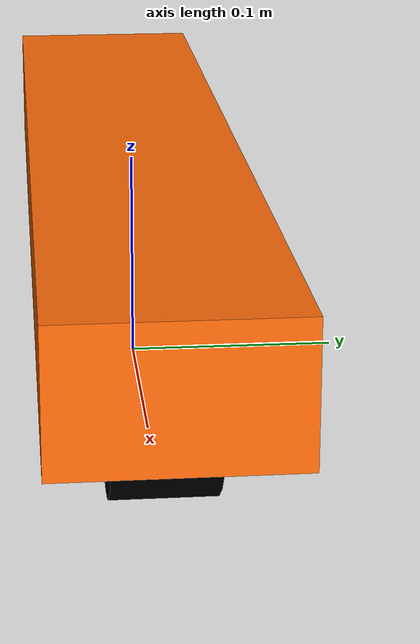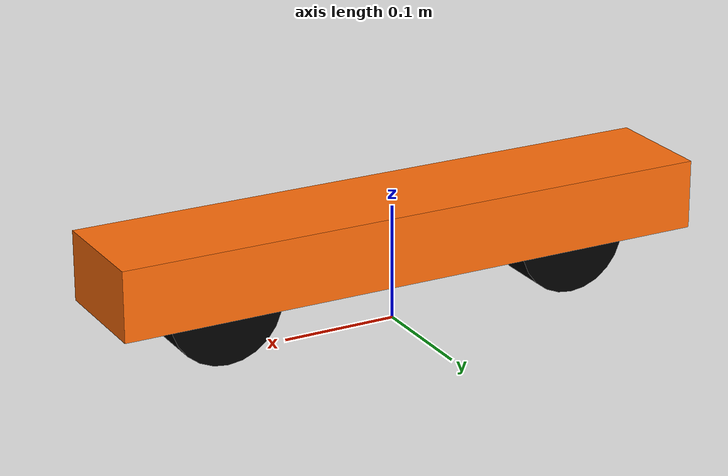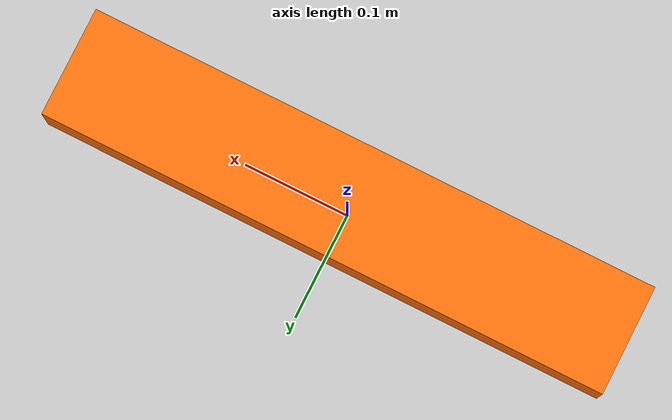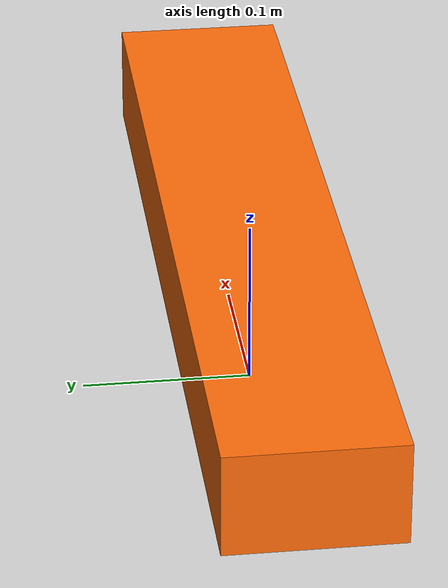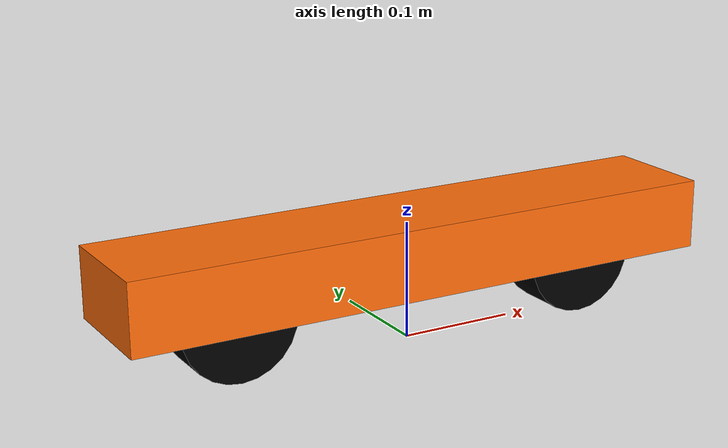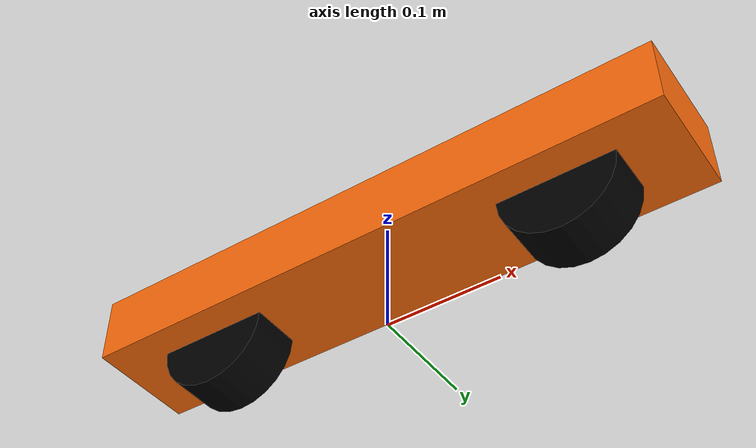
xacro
<?xml version="1.0"?>
<robot xmlns:xacro="http://www.ros.org/wiki/xacro" name="my_robot">

  <xacro:include filename="common_propperties.xacro"/>
  <xacro:include filename="mobile_baseg.xacro"/>
  <xacro:include filename="mobile_baseg.ros2_control.xacro"/>
  <xacro:include filename="mobile_base.gazebo.xacro"/>

  <!-- instancia el robot -->
  <xacro:carlikebot prefix=""/>

  <!-- instancia el bloque ros2_control -->
  <xacro:carlikebot_ros2_control
    prefix=""
    hardware_type="gazebo"/>

  <xacro:carlikebot_gazebo prefix=""/>

</robot>

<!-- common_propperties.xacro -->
<robot>

  <material name="black">
    <color rgba="0.0 0.0 0.0 1.0"/>
  </material>

  <material name="blue">
    <color rgba="0.0 0.0 0.8 1.0"/>
  </material>

  <material name="green">
    <color rgba="0.0 0.8 0.0 1.0"/>
  </material>

  <material name="grey">
    <color rgba="0.2 0.2 0.2 1.0"/>
  </material>

  <material name="orange">
    <color rgba="${255/255} ${108/255} ${10/255} 1.0"/>
  </material>

  <material name="brown">
    <color rgba="${222/255} ${207/255} ${195/255} 1.0"/>
  </material>

  <material name="red">
    <color rgba="0.8 0.0 0.0 1.0"/>
  </material>

  <material name="white">
    <color rgba="1.0 1.0 1.0 1.0"/>
  </material>

  <material name="invisible">
    <color rgba="0.0 0.0 0.0 0.0"/>
  </material>

</robot>

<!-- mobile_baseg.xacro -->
<robot xmlns:xacro="http://www.ros.org/wiki/xacro" name="my_robot">

  <xacro:macro name="carlikebot" params="prefix">

    <!-- Robot properties          -->

    <xacro:property name="PI" value="3.1415926535897931"/>

    <!-- Chassis -->
    <xacro:property name="base_mass" value="4.0"/>
    <xacro:property name="base_length" value="0.525"/>
    <xacro:property name="base_width" value="0.10"/>
    <xacro:property name="base_height" value="0.060"/>

    <!-- Wheel geometry -->
    <xacro:property name="wheelbase" value="0.325"/>
    <xacro:property name="wheel_radius" value="0.05"/>
    <xacro:property name="wheel_len" value="0.045"/>
    <xacro:property name="wheel_mass" value="0.34055"/>

    <!-- Base link                 -->

    <link name="${prefix}base_link"/>

    <!-- Chassis                   -->

    <link name="${prefix}chassis_link">

      <collision>
        <origin xyz="0 0 0" rpy="0 0 0"/>
        <geometry>
          <box size="${base_length} ${base_width} ${base_height}"/>
        </geometry>
      </collision>

      <visual>
        <origin xyz="0 0 0" rpy="0 0 0"/>
        <geometry>
          <box size="${base_length} ${base_width} ${base_height}"/>
        </geometry>

        <material name="orange"/>
      </visual>

      <inertial>

        <origin xyz="0 0 0"
                rpy="0 0 0"/>

        <mass value="${base_mass}"/>

        <inertia
          ixx="0.000270"
          ixy="0.0"
          ixz="0.0"
          iyy="0.000270"
          iyz="0.0"
          izz="0.000426"/>

      </inertial>

    </link>

    <!-- Fixed joint               -->

    <joint name="${prefix}chassis_joint"
           type="fixed">

      <parent link="${prefix}base_link"/>

      <child link="${prefix}chassis_link"/>

      <origin
          xyz="0 0 ${base_height/2 + wheel_radius}"
          rpy="0 0 0"/>

    </joint>
    <link name="${prefix}rear_wheel">

      <collision>
        <origin xyz="0 0 0" rpy="${PI/2} 0 ${PI/2}"/>
        <geometry>
          <cylinder
              radius="${wheel_radius}"
              length="${wheel_len}"/>
        </geometry>
      </collision>

      <visual>
        <origin xyz="0 0 0" rpy="${PI/2} 0 ${PI/2}"/>
        <geometry>
          <cylinder
              radius="${wheel_radius}"
              length="${wheel_len}"/>
        </geometry>

        <material name="black"/>
      </visual>

      <inertial>

        <origin xyz="0 0 0"
                rpy="${PI/2} 0 ${PI/2}"/>

        <mass value="${wheel_mass}"/>

        <inertia
            ixx="0.000270"
            ixy="0.0"
            ixz="0.0"
            iyy="0.000270"
            iyz="0.0"
            izz="0.000426"/>

      </inertial>

    </link>

    <!-- Rear wheel joint          -->

    <joint
        name="${prefix}rear_wheel_joint"
        type="continuous">

      <parent link="${prefix}chassis_link"/>
      <child link="${prefix}rear_wheel"/>

      <!-- rueda ubicada en el centro trasero -->
      <origin
          xyz="-${wheelbase/2} 0 -${base_height/2}"
          rpy="0 0 ${PI/2}"/>

      <!-- eje de giro -->
      <axis xyz="1 0 0"/>

      <limit
          effort="100.0"
          velocity="100.0"/>

      <dynamics damping="0.2"/>

    </joint>
    <!-- Front wheel               -->

    <link name="${prefix}front_wheel">

      <collision>
        <origin xyz="0 0 0" rpy="${PI/2} 0 ${PI/2}"/>
        <geometry>
          <cylinder
              radius="${wheel_radius}"
              length="${wheel_len}"/>
        </geometry>
      </collision>

      <visual>
        <origin xyz="0 0 0" rpy="${PI/2} 0 ${PI/2}"/>
        <geometry>
          <cylinder
              radius="${wheel_radius}"
              length="${wheel_len}"/>
        </geometry>

        <material name="black"/>
      </visual>

      <inertial>

        <origin xyz="0 0 0"
                rpy="${PI/2} 0 ${PI/2}"/>

        <mass value="${wheel_mass}"/>

        <inertia
            ixx="0.000270"
            ixy="0.0"
            ixz="0.0"
            iyy="0.000270"
            iyz="0.0"
            izz="0.000426"/>

      </inertial>

    </link>

    <!-- Steering joint            -->

    <joint
        name="${prefix}front_wheel_joint"
        type="revolute">

      <parent link="${prefix}chassis_link"/>
      <child link="${prefix}front_wheel"/>

      <!-- rueda ubicada en el centro delantero -->
      <origin
          xyz="${wheelbase/2} 0 -${base_height/2}"
          rpy="0 0 ${PI/2}"/>

      <!-- eje de dirección -->
      <axis xyz="0 0 1"/>

      <limit
          lower="-0.6"
          upper="0.6"
          effort="100.0"
          velocity="10.0"/>

      <dynamics damping="0.2"/>

    </joint>

  </xacro:macro>

</robot>
